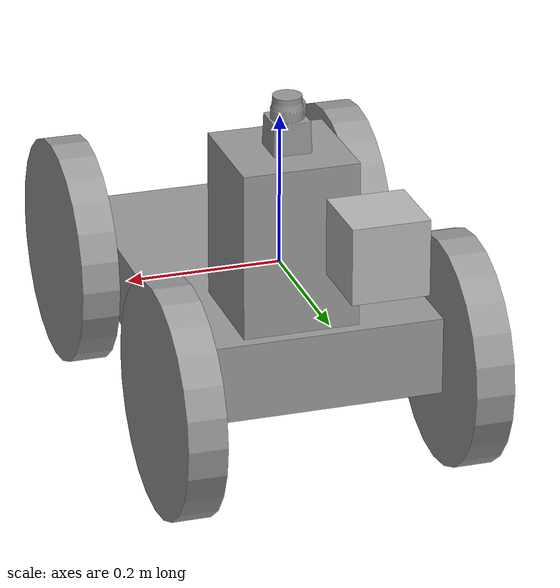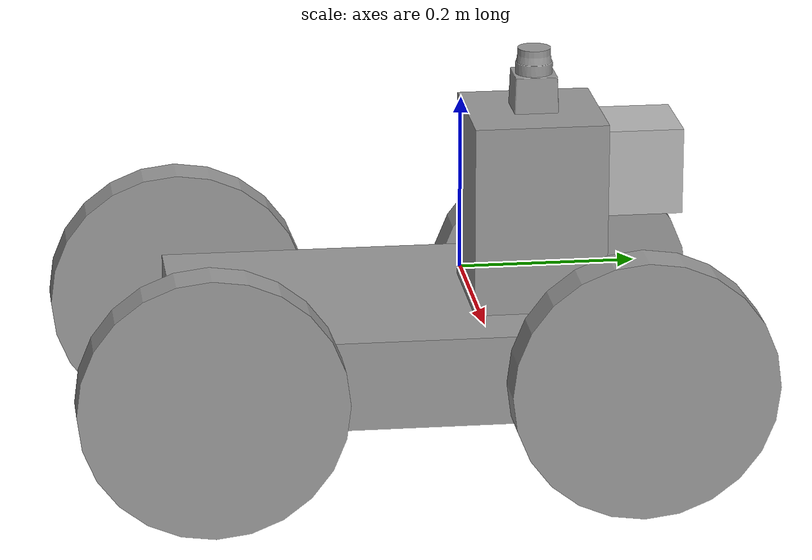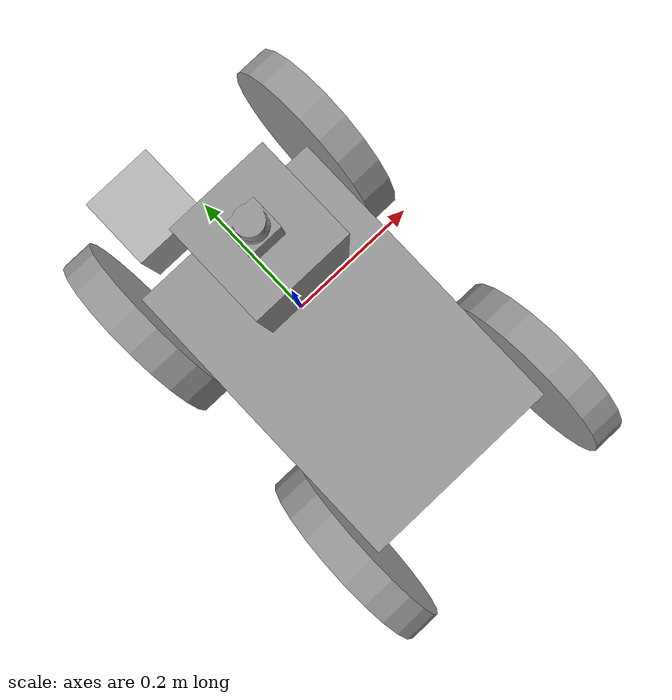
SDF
<?xml version='1.0'?>
<sdf version='1.6'>
  <model name='4_wheel_robot'>
    <link name='link_0'>
      <pose frame=''>0.004466 -0.080146 -0.078511 0 -0 0</pose>
      <inertial>
        <mass>2.0487</mass>
        <inertia>
          <ixx>0.0444727</ixx>
          <ixy>0</ixy>
          <ixz>0</ixz>
          <iyy>0.0203834</iyy>
          <iyz>0</iyz>
          <izz>0.0612731</izz>
        </inertia>
        <pose frame=''>0 0 0 0 -0 0</pose>
      </inertial>
      <gravity>1</gravity>
      <self_collide>0</self_collide>
      <kinematic>0</kinematic>
      <visual name='visual'>
        <pose frame=''>0 0 0 0 -0 0</pose>
        <geometry>
          <box>
            <size>0.33 0.5 0.102438</size>
          </box>
        </geometry>
        <material>
          <lighting>1</lighting>
          <script>
            <uri>file://media/materials/scripts/gazebo.material</uri>
            <name>Gazebo/Grey</name>
          </script>
          <shader type='pixel'>
            <normal_map>__default__</normal_map>
          </shader>
          <ambient>0.3 0.3 0.3 1</ambient>
          <diffuse>0.7 0.7 0.7 1</diffuse>
          <specular>0.01 0.01 0.01 1</specular>
          <emissive>0 0 0 1</emissive>
        </material>
        <transparency>0</transparency>
        <cast_shadows>1</cast_shadows>
      </visual>
      <collision name='collision'>
        <laser_retro>0</laser_retro>
        <max_contacts>10</max_contacts>
        <pose frame=''>0 0 0 0 -0 0</pose>
        <geometry>
          <box>
            <size>0.33 0.5 0.102438</size>
          </box>
        </geometry>
        <surface>
          <friction>
            <ode>
              <mu>1</mu>
              <mu2>1</mu2>
              <fdir1>0 0 0</fdir1>
              <slip1>0</slip1>
              <slip2>0</slip2>
            </ode>
            <torsional>
              <coefficient>1</coefficient>
              <patch_radius>0</patch_radius>
              <surface_radius>0</surface_radius>
              <use_patch_radius>1</use_patch_radius>
              <ode>
                <slip>0</slip>
              </ode>
            </torsional>
          </friction>
          <bounce>
            <restitution_coefficient>0</restitution_coefficient>
            <threshold>1e+06</threshold>
          </bounce>
          <contact>
            <collide_without_contact>0</collide_without_contact>
            <collide_without_contact_bitmask>1</collide_without_contact_bitmask>
            <collide_bitmask>1</collide_bitmask>
            <ode>
              <soft_cfm>0</soft_cfm>
              <soft_erp>0.2</soft_erp>
              <kp>1e+13</kp>
              <kd>1</kd>
              <max_vel>0.01</max_vel>
              <min_depth>0</min_depth>
            </ode>
            <bullet>
              <split_impulse>1</split_impulse>
              <split_impulse_penetration_threshold>-0.01</split_impulse_penetration_threshold>
              <soft_cfm>0</soft_cfm>
              <soft_erp>0.2</soft_erp>
              <kp>1e+13</kp>
              <kd>1</kd>
            </bullet>
          </contact>
        </surface>
      </collision>
    </link>
    <link name='link_1'>
      <pose frame=''>0.194466 0.17969 -0.081399 0 -0 0</pose>
      <inertial>
        <mass>1</mass>
        <inertia>
          <ixx>0.145833</ixx>
          <ixy>0</ixy>
          <ixz>0</ixz>
          <iyy>0.145833</iyy>
          <iyz>0</iyz>
          <izz>0.125</izz>
        </inertia>
        <pose frame=''>0 0 0 0 -0 0</pose>
      </inertial>
      <gravity>1</gravity>
      <self_collide>0</self_collide>
      <kinematic>0</kinematic>
      <visual name='visual'>
        <pose frame=''>0 0 0 1.57005 1.57 1.57005</pose>
        <geometry>
          <cylinder>
            <radius>0.15</radius>
            <length>0.05</length>
          </cylinder>
        </geometry>
        <material>
          <lighting>1</lighting>
          <script>
            <uri>file://media/materials/scripts/gazebo.material</uri>
            <name>Gazebo/Grey</name>
          </script>
          <shader type='pixel'>
            <normal_map>__default__</normal_map>
          </shader>
          <ambient>0.3 0.3 0.3 1</ambient>
          <diffuse>0.7 0.7 0.7 1</diffuse>
          <specular>0.01 0.01 0.01 1</specular>
          <emissive>0 0 0 1</emissive>
        </material>
        <transparency>0</transparency>
        <cast_shadows>1</cast_shadows>
      </visual>
      <collision name='collision'>
        <laser_retro>0</laser_retro>
        <max_contacts>10</max_contacts>
        <pose frame=''>0 0 0 1.57 1.57 1.57</pose>
        <geometry>
          <cylinder>
            <radius>0.15</radius>
            <length>0.05</length>
          </cylinder>
        </geometry>
        <surface>
          <friction>
            <ode>
              <mu>1</mu>
              <mu2>1</mu2>
              <fdir1>0 0 0</fdir1>
              <slip1>0</slip1>
              <slip2>0</slip2>
            </ode>
            <torsional>
              <coefficient>1</coefficient>
              <patch_radius>0</patch_radius>
              <surface_radius>0</surface_radius>
              <use_patch_radius>1</use_patch_radius>
              <ode>
                <slip>0</slip>
              </ode>
            </torsional>
          </friction>
          <bounce>
            <restitution_coefficient>0</restitution_coefficient>
            <threshold>1e+06</threshold>
          </bounce>
          <contact>
            <collide_without_contact>0</collide_without_contact>
            <collide_without_contact_bitmask>1</collide_without_contact_bitmask>
            <collide_bitmask>1</collide_bitmask>
            <ode>
              <soft_cfm>0</soft_cfm>
              <soft_erp>0.2</soft_erp>
              <kp>1e+13</kp>
              <kd>1</kd>
              <max_vel>0.01</max_vel>
              <min_depth>0</min_depth>
            </ode>
            <bullet>
              <split_impulse>1</split_impulse>
              <split_impulse_penetration_threshold>-0.01</split_impulse_penetration_threshold>
              <soft_cfm>0</soft_cfm>
              <soft_erp>0.2</soft_erp>
              <kp>1e+13</kp>
              <kd>1</kd>
            </bullet>
          </contact>
        </surface>
      </collision>
    </link>
    <link name='link_1_clone'>
      <pose frame=''>0.194466 -0.298957 -0.082002 0 -0 0</pose>
      <inertial>
        <mass>1</mass>
        <inertia>
          <ixx>0.145833</ixx>
          <ixy>0</ixy>
          <ixz>0</ixz>
          <iyy>0.145833</iyy>
          <iyz>0</iyz>
          <izz>0.125</izz>
        </inertia>
        <pose frame=''>0 0 0 0 -0 0</pose>
      </inertial>
      <self_collide>0</self_collide>
      <kinematic>0</kinematic>
      <visual name='visual'>
        <pose frame=''>0 0 0 1.57005 1.57 1.57005</pose>
        <geometry>
          <cylinder>
            <radius>0.15</radius>
            <length>0.05</length>
          </cylinder>
        </geometry>
        <material>
          <lighting>1</lighting>
          <script>
            <uri>file://media/materials/scripts/gazebo.material</uri>
            <name>Gazebo/Grey</name>
          </script>
          <shader type='pixel'>
            <normal_map>__default__</normal_map>
          </shader>
          <ambient>0.3 0.3 0.3 1</ambient>
          <diffuse>0.7 0.7 0.7 1</diffuse>
          <specular>0.01 0.01 0.01 1</specular>
          <emissive>0 0 0 1</emissive>
        </material>
        <transparency>0</transparency>
        <cast_shadows>1</cast_shadows>
      </visual>
      <collision name='collision'>
        <laser_retro>0</laser_retro>
        <max_contacts>10</max_contacts>
        <pose frame=''>0 0 0 1.57005 1.57 1.57005</pose>
        <geometry>
          <cylinder>
            <radius>0.15</radius>
            <length>0.05</length>
          </cylinder>
        </geometry>
        <surface>
          <friction>
            <ode>
              <mu>1</mu>
              <mu2>1</mu2>
              <fdir1>0 0 0</fdir1>
              <slip1>0</slip1>
              <slip2>0</slip2>
            </ode>
            <torsional>
              <coefficient>1</coefficient>
              <patch_radius>0</patch_radius>
              <surface_radius>0</surface_radius>
              <use_patch_radius>1</use_patch_radius>
              <ode>
                <slip>0</slip>
              </ode>
            </torsional>
          </friction>
          <bounce>
            <restitution_coefficient>0</restitution_coefficient>
            <threshold>1e+06</threshold>
          </bounce>
          <contact>
            <collide_without_contact>0</collide_without_contact>
            <collide_without_contact_bitmask>1</collide_without_contact_bitmask>
            <collide_bitmask>1</collide_bitmask>
            <ode>
              <soft_cfm>0</soft_cfm>
              <soft_erp>0.2</soft_erp>
              <kp>1e+13</kp>
              <kd>1</kd>
              <max_vel>0.01</max_vel>
              <min_depth>0</min_depth>
            </ode>
            <bullet>
              <split_impulse>1</split_impulse>
              <split_impulse_penetration_threshold>-0.01</split_impulse_penetration_threshold>
              <soft_cfm>0</soft_cfm>
              <soft_erp>0.2</soft_erp>
              <kp>1e+13</kp>
              <kd>1</kd>
            </bullet>
          </contact>
        </surface>
      </collision>
    </link>
    <link name='link_1_clone_0'>
      <pose frame=''>-0.185534 -0.310598 -0.082002 0 -0 0</pose>
      <inertial>
        <mass>1</mass>
        <inertia>
          <ixx>0.145833</ixx>
          <ixy>0</ixy>
          <ixz>0</ixz>
          <iyy>0.145833</iyy>
          <iyz>0</iyz>
          <izz>0.125</izz>
        </inertia>
        <pose frame=''>0 0 0 0 -0 0</pose>
      </inertial>
      <self_collide>0</self_collide>
      <kinematic>0</kinematic>
      <visual name='visual'>
        <pose frame=''>0 0 0 1.57005 1.57 1.57005</pose>
        <geometry>
          <cylinder>
            <radius>0.15</radius>
            <length>0.05</length>
          </cylinder>
        </geometry>
        <material>
          <lighting>1</lighting>
          <script>
            <uri>file://media/materials/scripts/gazebo.material</uri>
            <name>Gazebo/Grey</name>
          </script>
          <shader type='pixel'>
            <normal_map>__default__</normal_map>
          </shader>
          <ambient>0.3 0.3 0.3 1</ambient>
          <diffuse>0.7 0.7 0.7 1</diffuse>
          <specular>0.01 0.01 0.01 1</specular>
          <emissive>0 0 0 1</emissive>
        </material>
        <transparency>0</transparency>
        <cast_shadows>1</cast_shadows>
      </visual>
      <collision name='collision'>
        <laser_retro>0</laser_retro>
        <max_contacts>10</max_contacts>
        <pose frame=''>0 0 0 1.57005 1.57 1.57005</pose>
        <geometry>
          <cylinder>
            <radius>0.15</radius>
            <length>0.05</length>
          </cylinder>
        </geometry>
        <surface>
          <friction>
            <ode>
              <mu>1</mu>
              <mu2>1</mu2>
              <fdir1>0 0 0</fdir1>
              <slip1>0</slip1>
              <slip2>0</slip2>
            </ode>
            <torsional>
              <coefficient>1</coefficient>
              <patch_radius>0</patch_radius>
              <surface_radius>0</surface_radius>
              <use_patch_radius>1</use_patch_radius>
              <ode>
                <slip>0</slip>
              </ode>
            </torsional>
          </friction>
          <bounce>
            <restitution_coefficient>0</restitution_coefficient>
            <threshold>1e+06</threshold>
          </bounce>
          <contact>
            <collide_without_contact>0</collide_without_contact>
            <collide_without_contact_bitmask>1</collide_without_contact_bitmask>
            <collide_bitmask>1</collide_bitmask>
            <ode>
              <soft_cfm>0</soft_cfm>
              <soft_erp>0.2</soft_erp>
              <kp>1e+13</kp>
              <kd>1</kd>
              <max_vel>0.01</max_vel>
              <min_depth>0</min_depth>
            </ode>
            <bullet>
              <split_impulse>1</split_impulse>
              <split_impulse_penetration_threshold>-0.01</split_impulse_penetration_threshold>
              <soft_cfm>0</soft_cfm>
              <soft_erp>0.2</soft_erp>
              <kp>1e+13</kp>
              <kd>1</kd>
            </bullet>
          </contact>
        </surface>
      </collision>
    </link>
    <link name='link_1_clone_1'>
      <pose frame=''>-0.185534 0.143227 -0.082002 0 -0 0</pose>
      <inertial>
        <mass>1</mass>
        <inertia>
          <ixx>0.145833</ixx>
          <ixy>0</ixy>
          <ixz>0</ixz>
          <iyy>0.145833</iyy>
          <iyz>0</iyz>
          <izz>0.125</izz>
        </inertia>
        <pose frame=''>0 0 0 0 -0 0</pose>
      </inertial>
      <self_collide>0</self_collide>
      <kinematic>0</kinematic>
      <visual name='visual'>
        <pose frame=''>0 0 0 1.57005 1.57 1.57005</pose>
        <geometry>
          <cylinder>
            <radius>0.15</radius>
            <length>0.05</length>
          </cylinder>
        </geometry>
        <material>
          <lighting>1</lighting>
          <script>
            <uri>file://media/materials/scripts/gazebo.material</uri>
            <name>Gazebo/Grey</name>
          </script>
          <shader type='pixel'>
            <normal_map>__default__</normal_map>
          </shader>
          <ambient>0.3 0.3 0.3 1</ambient>
          <diffuse>0.7 0.7 0.7 1</diffuse>
          <specular>0.01 0.01 0.01 1</specular>
          <emissive>0 0 0 1</emissive>
        </material>
        <transparency>0</transparency>
        <cast_shadows>1</cast_shadows>
      </visual>
      <collision name='collision'>
        <laser_retro>0</laser_retro>
        <max_contacts>10</max_contacts>
        <pose frame=''>0 0 0 1.57005 1.57 1.57005</pose>
        <geometry>
          <cylinder>
            <radius>0.15</radius>
            <length>0.05</length>
          </cylinder>
        </geometry>
        <surface>
          <friction>
            <ode>
              <mu>1</mu>
              <mu2>1</mu2>
              <fdir1>0 0 0</fdir1>
              <slip1>0</slip1>
              <slip2>0</slip2>
            </ode>
            <torsional>
              <coefficient>1</coefficient>
              <patch_radius>0</patch_radius>
              <surface_radius>0</surface_radius>
              <use_patch_radius>1</use_patch_radius>
              <ode>
                <slip>0</slip>
              </ode>
            </torsional>
          </friction>
          <bounce>
            <restitution_coefficient>0</restitution_coefficient>
            <threshold>1e+06</threshold>
          </bounce>
          <contact>
            <collide_without_contact>0</collide_without_contact>
            <collide_without_contact_bitmask>1</collide_without_contact_bitmask>
            <collide_bitmask>1</collide_bitmask>
            <ode>
              <soft_cfm>0</soft_cfm>
              <soft_erp>0.2</soft_erp>
              <kp>1e+13</kp>
              <kd>1</kd>
              <max_vel>0.01</max_vel>
              <min_depth>0</min_depth>
            </ode>
            <bullet>
              <split_impulse>1</split_impulse>
              <split_impulse_penetration_threshold>-0.01</split_impulse_penetration_threshold>
              <soft_cfm>0</soft_cfm>
              <soft_erp>0.2</soft_erp>
              <kp>1e+13</kp>
              <kd>1</kd>
            </bullet>
          </contact>
        </surface>
      </collision>
    </link>
    <link name='link_2'>
      <pose frame=''>0.020559 0.078794 0.07978 0 0 -3.14</pose>
      <inertial>
        <mass>0.735328</mass>
        <inertia>
          <ixx>0.00436068</ixx>
          <ixy>0</ixy>
          <ixz>0</ixz>
          <iyy>0.00436068</iyy>
          <iyz>0</iyz>
          <izz>0.00275748</izz>
        </inertia>
        <pose frame=''>0 0 0 0 -0 0</pose>
      </inertial>
      <gravity>1</gravity>
      <self_collide>0</self_collide>
      <kinematic>0</kinematic>
      <visual name='visual'>
        <pose frame=''>0 0 0 0 -0 0</pose>
        <geometry>
          <box>
            <size>0.15 0.15 0.220597</size>
          </box>
        </geometry>
        <material>
          <lighting>1</lighting>
          <script>
            <uri>file://media/materials/scripts/gazebo.material</uri>
            <name>Gazebo/Grey</name>
          </script>
          <shader type='pixel'>
            <normal_map>__default__</normal_map>
          </shader>
          <ambient>0.3 0.3 0.3 1</ambient>
          <diffuse>0.7 0.7 0.7 1</diffuse>
          <specular>0.01 0.01 0.01 1</specular>
          <emissive>0 0 0 1</emissive>
        </material>
        <transparency>0</transparency>
        <cast_shadows>1</cast_shadows>
      </visual>
      <collision name='collision'>
        <laser_retro>0</laser_retro>
        <max_contacts>10</max_contacts>
        <pose frame=''>0 0 0 0 -0 3.14</pose>
        <geometry>
          <box>
            <size>0.15 0.15 0.220597</size>
          </box>
        </geometry>
        <surface>
          <friction>
            <ode>
              <mu>1</mu>
              <mu2>1</mu2>
              <fdir1>0 0 0</fdir1>
              <slip1>0</slip1>
              <slip2>0</slip2>
            </ode>
            <torsional>
              <coefficient>1</coefficient>
              <patch_radius>0</patch_radius>
              <surface_radius>0</surface_radius>
              <use_patch_radius>1</use_patch_radius>
              <ode>
                <slip>0</slip>
              </ode>
            </torsional>
          </friction>
          <bounce>
            <restitution_coefficient>0</restitution_coefficient>
            <threshold>1e+06</threshold>
          </bounce>
          <contact>
            <collide_without_contact>0</collide_without_contact>
            <collide_without_contact_bitmask>1</collide_without_contact_bitmask>
            <collide_bitmask>1</collide_bitmask>
            <ode>
              <soft_cfm>0</soft_cfm>
              <soft_erp>0.2</soft_erp>
              <kp>1e+13</kp>
              <kd>1</kd>
              <max_vel>0.01</max_vel>
              <min_depth>0</min_depth>
            </ode>
            <bullet>
              <split_impulse>1</split_impulse>
              <split_impulse_penetration_threshold>-0.01</split_impulse_penetration_threshold>
              <soft_cfm>0</soft_cfm>
              <soft_erp>0.2</soft_erp>
              <kp>1e+13</kp>
              <kd>1</kd>
            </bullet>
          </contact>
        </surface>
      </collision>
    </link>
    <link name='link_4'>
      <pose frame=''>0.01647 0.080267 0.225372 0 -0 0</pose>
      <inertial>
        <mass>1</mass>
        <inertia>
          <ixx>0.166667</ixx>
          <ixy>0</ixy>
          <ixz>0</ixz>
          <iyy>0.166667</iyy>
          <iyz>0</iyz>
          <izz>0.166667</izz>
        </inertia>
        <pose frame=''>0 0 0 0 -0 0</pose>
      </inertial>
      <gravity>1</gravity>
      <self_collide>0</self_collide>
      <kinematic>0</kinematic>
      <visual name='visual'>
        <pose frame=''>0 0 0 0 -0 0</pose>
        <geometry>
          <mesh>
            <uri>/home/workspace/catkin_ws/src/Go_Chase_It/src/my_robot/meshes/hokuyo.dae</uri>
          </mesh>
        </geometry>
        <material>
          <lighting>1</lighting>
          <script>
            <uri>file://media/materials/scripts/gazebo.material</uri>
            <name>Gazebo/Grey</name>
          </script>
          <shader type='pixel'>
            <normal_map>__default__</normal_map>
          </shader>
          <ambient>0.3 0.3 0.3 1</ambient>
          <diffuse>0.7 0.7 0.7 1</diffuse>
          <specular>0.01 0.01 0.01 1</specular>
          <emissive>0 0 0 1</emissive>
        </material>
        <transparency>0</transparency>
        <cast_shadows>1</cast_shadows>
      </visual>
      <collision name='collision'>
        <laser_retro>0</laser_retro>
        <max_contacts>10</max_contacts>
        <pose frame=''>0 0 0 0 -0 0</pose>
        <geometry>
          <mesh>
            <uri>/home/workspace/catkin_ws/src/Go_Chase_It/src/my_robot/meshes/hokuyo.dae</uri>
            <scale>1 1 1</scale>
          </mesh>
        </geometry>
        <surface>
          <friction>
            <ode>
              <mu>1</mu>
              <mu2>1</mu2>
              <fdir1>0 0 0</fdir1>
              <slip1>0</slip1>
              <slip2>0</slip2>
            </ode>
            <torsional>
              <coefficient>1</coefficient>
              <patch_radius>0</patch_radius>
              <surface_radius>0</surface_radius>
              <use_patch_radius>1</use_patch_radius>
              <ode>
                <slip>0</slip>
              </ode>
            </torsional>
          </friction>
          <bounce>
            <restitution_coefficient>0</restitution_coefficient>
            <threshold>1e+06</threshold>
          </bounce>
          <contact>
            <collide_without_contact>0</collide_without_contact>
            <collide_without_contact_bitmask>1</collide_without_contact_bitmask>
            <collide_bitmask>1</collide_bitmask>
            <ode>
              <soft_cfm>0</soft_cfm>
              <soft_erp>0.2</soft_erp>
              <kp>1e+13</kp>
              <kd>1</kd>
              <max_vel>0.01</max_vel>
              <min_depth>0</min_depth>
            </ode>
            <bullet>
              <split_impulse>1</split_impulse>
              <split_impulse_penetration_threshold>-0.01</split_impulse_penetration_threshold>
              <soft_cfm>0</soft_cfm>
              <soft_erp>0.2</soft_erp>
              <kp>1e+13</kp>
              <kd>1</kd>
            </bullet>
          </contact>
        </surface>
      </collision>
    </link>
    <model name='camera'>
      <pose frame=''>-0.059361 0.207725 0.100295 0 -0 0</pose>
      <link name='link'>
        <inertial>
          <mass>0.1</mass>
          <inertia>
            <ixx>0.000166667</ixx>
            <iyy>0.000166667</iyy>
            <izz>0.000166667</izz>
            <ixy>0</ixy>
            <ixz>0</ixz>
            <iyz>0</iyz>
          </inertia>
        </inertial>
        <collision name='collision'>
          <geometry>
            <box>
              <size>0.1 0.1 0.1</size>
            </box>
          </geometry>
        </collision>
        <visual name='visual'>
          <geometry>
            <box>
              <size>0.1 0.1 0.1</size>
            </box>
          </geometry>
        </visual>
        <sensor name='camera' type='camera'>
          <camera name='__default__'>
            <horizontal_fov>1.047</horizontal_fov>
            <image>
              <width>320</width>
              <height>240</height>
            </image>
            <clip>
              <near>0.1</near>
              <far>100</far>
            </clip>
          </camera>
          <always_on>1</always_on>
          <update_rate>30</update_rate>
          <visualize>1</visualize>
        </sensor>
      </link>
    </model>
    <joint name='link_0_JOINT_0' type='revolute'>
      <parent>link_0</parent>
      <child>link_1</child>
      <pose frame=''>0 0 0 0 -0 0</pose>
      <axis>
        <xyz>1 0 0</xyz>
        <use_parent_model_frame>0</use_parent_model_frame>
        <limit>
          <lower>-1.79769e+308</lower>
          <upper>1.79769e+308</upper>
          <effort>-1</effort>
          <velocity>-1</velocity>
        </limit>
        <dynamics>
          <spring_reference>0</spring_reference>
          <spring_stiffness>0</spring_stiffness>
          <damping>0</damping>
        </dynamics>
      </axis>
      <physics>
        <ode>
          <limit>
            <cfm>0</cfm>
            <erp>0.2</erp>
          </limit>
          <suspension>
            <cfm>0</cfm>
            <erp>0.2</erp>
          </suspension>
        </ode>
      </physics>
    </joint>
    <joint name='link_0_JOINT_1' type='revolute'>
      <parent>link_0</parent>
      <child>link_1_clone</child>
      <pose frame=''>0 0 0 0 -0 0</pose>
      <axis>
        <xyz>1 0 0</xyz>
        <use_parent_model_frame>0</use_parent_model_frame>
        <limit>
          <lower>-1.79769e+308</lower>
          <upper>1.79769e+308</upper>
          <effort>-1</effort>
          <velocity>-1</velocity>
        </limit>
        <dynamics>
          <spring_reference>0</spring_reference>
          <spring_stiffness>0</spring_stiffness>
          <damping>0</damping>
        </dynamics>
      </axis>
      <physics>
        <ode>
          <limit>
            <cfm>0</cfm>
            <erp>0.2</erp>
          </limit>
          <suspension>
            <cfm>0</cfm>
            <erp>0.2</erp>
          </suspension>
        </ode>
      </physics>
    </joint>
    <joint name='link_0_JOINT_2' type='revolute'>
      <parent>link_0</parent>
      <child>link_1_clone_1</child>
      <pose frame=''>0 0 0 0 -0 0</pose>
      <axis>
        <xyz>1 0 0</xyz>
        <use_parent_model_frame>0</use_parent_model_frame>
        <limit>
          <lower>-1.79769e+308</lower>
          <upper>1.79769e+308</upper>
          <effort>-1</effort>
          <velocity>-1</velocity>
        </limit>
        <dynamics>
          <spring_reference>0</spring_reference>
          <spring_stiffness>0</spring_stiffness>
          <damping>0</damping>
        </dynamics>
      </axis>
      <physics>
        <ode>
          <limit>
            <cfm>0</cfm>
            <erp>0.2</erp>
          </limit>
          <suspension>
            <cfm>0</cfm>
            <erp>0.2</erp>
          </suspension>
        </ode>
      </physics>
    </joint>
    <joint name='link_0_JOINT_3' type='revolute'>
      <parent>link_0</parent>
      <child>link_1_clone_0</child>
      <pose frame=''>0 0 0 0 -0 0</pose>
      <axis>
        <xyz>1 0 0</xyz>
        <use_parent_model_frame>0</use_parent_model_frame>
        <limit>
          <lower>-1.79769e+308</lower>
          <upper>1.79769e+308</upper>
          <effort>-1</effort>
          <velocity>-1</velocity>
        </limit>
        <dynamics>
          <spring_reference>0</spring_reference>
          <spring_stiffness>0</spring_stiffness>
          <damping>0</damping>
        </dynamics>
      </axis>
      <physics>
        <ode>
          <limit>
            <cfm>0</cfm>
            <erp>0.2</erp>
          </limit>
          <suspension>
            <cfm>0</cfm>
            <erp>0.2</erp>
          </suspension>
        </ode>
      </physics>
    </joint>
    <joint name='link_0_JOINT_4' type='fixed'>
      <parent>link_0</parent>
      <child>link_2</child>
      <pose frame=''>0 0 0 0 -0 0</pose>
      <physics>
        <ode>
          <limit>
            <cfm>0</cfm>
            <erp>0.2</erp>
          </limit>
          <suspension>
            <cfm>0</cfm>
            <erp>0.2</erp>
          </suspension>
        </ode>
      </physics>
    </joint>
    <joint name='link_2_JOINT_5' type='fixed'>
      <parent>link_2</parent>
      <child>camera::link</child>
      <pose frame=''>0 0 0 0 -0 0</pose>
      <physics>
        <ode>
          <limit>
            <cfm>0</cfm>
            <erp>0.2</erp>
          </limit>
          <suspension>
            <cfm>0</cfm>
            <erp>0.2</erp>
          </suspension>
        </ode>
      </physics>
    </joint>
    <joint name='link_2_JOINT_6' type='revolute'>
      <parent>link_2</parent>
      <child>link_4</child>
      <pose frame=''>0 0 0 0 -0 0</pose>
      <axis>
        <xyz>1 0 0</xyz>
        <use_parent_model_frame>0</use_parent_model_frame>
        <limit>
          <lower>-1.79769e+308</lower>
          <upper>1.79769e+308</upper>
          <effort>-1</effort>
          <velocity>-1</velocity>
        </limit>
        <dynamics>
          <spring_reference>0</spring_reference>
          <spring_stiffness>0</spring_stiffness>
          <damping>0</damping>
        </dynamics>
      </axis>
      <physics>
        <ode>
          <limit>
            <cfm>0</cfm>
            <erp>0.2</erp>
          </limit>
          <suspension>
            <cfm>0</cfm>
            <erp>0.2</erp>
          </suspension>
        </ode>
      </physics>
    </joint>
    <static>0</static>
    <allow_auto_disable>1</allow_auto_disable>
  </model>
</sdf>
